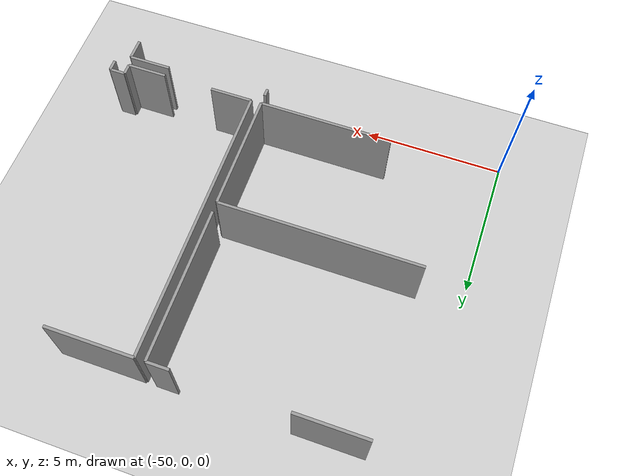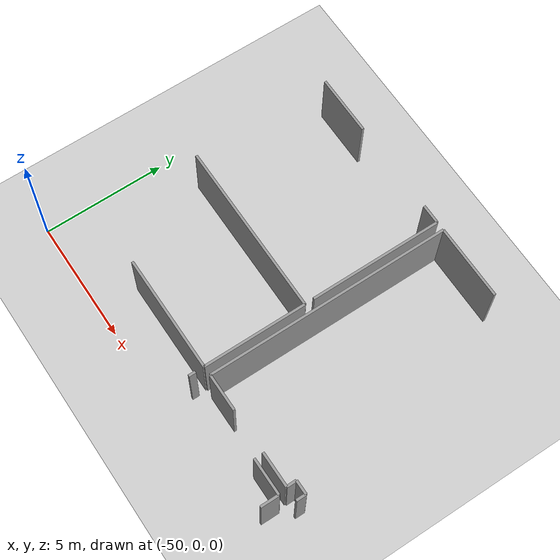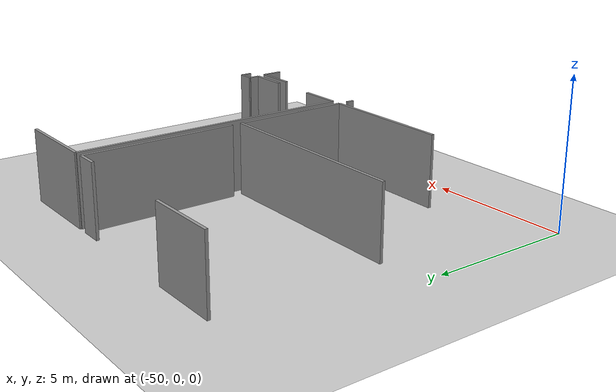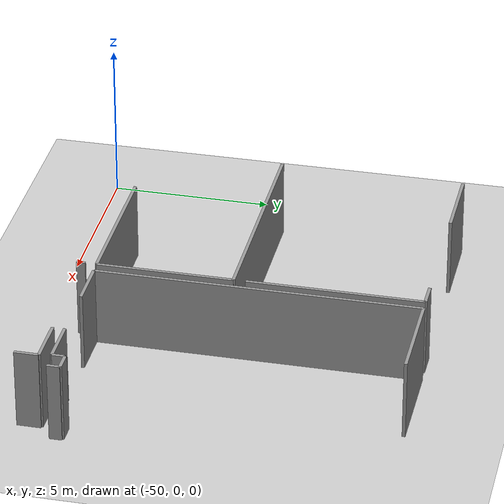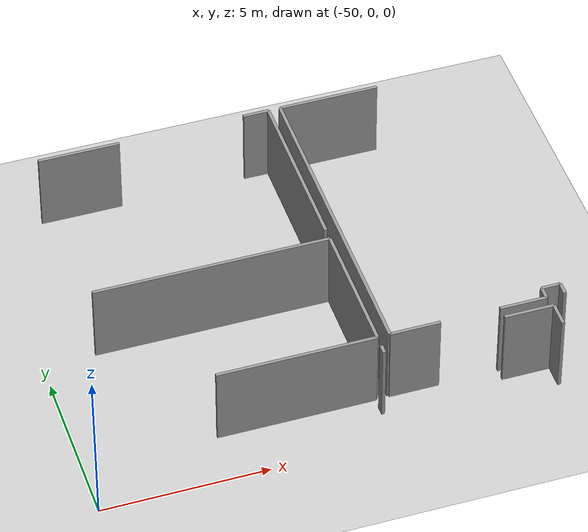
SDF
<sdf version="1.6">
 <world name="default">
  <model name="ground_plane">
   <static>1</static>
   <link name="link">
    <collision name="collision">
     <geometry><plane><normal>0 0 1</normal><size>100 100</size></plane></geometry>
     <surface><friction><ode><mu>100</mu><mu2>50</mu2></ode></friction></surface>
    </collision>
    <visual name="visual">
     <cast_shadows>0</cast_shadows>
     <geometry><plane><normal>0 0 1</normal><size>100 100</size></plane></geometry>
     <material>
      <script><uri>file://media/materials/scripts/gazebo.material</uri><name>Gazebo/Grey</name></script>
     </material>
    </visual>
   </link>
  </model>
  <model name="0510034689_Layout1">
   <static>1</static>
   <link name="Wall_30">
    <collision name="Wall_30_Collision">
     <geometry><box><size>0.277555330217 0.1 2.5</size></box></geometry>
     <pose>0.138777665109 0 1.25 0 0 0</pose>
    </collision>
    <visual name="Wall_30_Visual">
     <pose>0.138777665109 0 1.25 0 0 0</pose>
     <geometry><box><size>0.277555330217 0.1 2.5</size></box></geometry>
     <material>
      <script><uri>file://media/materials/scripts/gazebo.material</uri><name>Gazebo/Grey</name></script>
      <ambient>1 1 1 1</ambient>
     </material>
    </visual>
    <pose>15.0514435542 -11.0354577886 0 0 0 -1.57079632679</pose>
   </link>
   <link name="Wall_41">
    <collision name="Wall_41_Collision">
     <geometry><box><size>5.38218747105 0.1 2.5</size></box></geometry>
     <pose>2.69109373552 0 1.25 0 0 0</pose>
    </collision>
    <visual name="Wall_41_Visual">
     <pose>2.69109373552 0 1.25 0 0 0</pose>
     <geometry><box><size>5.38218747105 0.1 2.5</size></box></geometry>
     <material>
      <script><uri>file://media/materials/scripts/gazebo.material</uri><name>Gazebo/Grey</name></script>
      <ambient>1 1 1 1</ambient>
     </material>
    </visual>
    <pose>15.0523319343 -6.13604145435 0 0 0 1.57079632679</pose>
   </link>
   <link name="Wall_42">
    <collision name="Wall_42_Collision">
     <geometry><box><size>0.780759209646 0.1 2.5</size></box></geometry>
     <pose>0.390379604823 0 1.25 0 0 0</pose>
    </collision>
    <visual name="Wall_42_Visual">
     <pose>0.390379604823 0 1.25 0 0 0</pose>
     <geometry><box><size>0.780759209646 0.1 2.5</size></box></geometry>
     <material>
      <script><uri>file://media/materials/scripts/gazebo.material</uri><name>Gazebo/Grey</name></script>
      <ambient>1 1 1 1</ambient>
     </material>
    </visual>
    <pose>15.0523319343 -0.753853983306 0 0 0 3.14159265359</pose>
   </link>
   <link name="Wall_43">
    <collision name="Wall_43_Collision">
     <geometry><box><size>2.46779304804 0.1 2.5</size></box></geometry>
     <pose>1.23389652402 0 1.25 0 0 0</pose>
    </collision>
    <visual name="Wall_43_Visual">
     <pose>1.23389652402 0 1.25 0 0 0</pose>
     <geometry><box><size>2.46779304804 0.1 2.5</size></box></geometry>
     <material>
      <script><uri>file://media/materials/scripts/gazebo.material</uri><name>Gazebo/Grey</name></script>
      <ambient>1 1 1 1</ambient>
     </material>
    </visual>
    <pose>10.4411314917 -0.753853983306 0 0 0 3.14159265359</pose>
   </link>
   <link name="Wall_46">
    <collision name="Wall_46_Collision">
     <geometry><box><size>4.72605530039 0.1 2.5</size></box></geometry>
     <pose>2.3630276502 0 1.25 0 0 0</pose>
    </collision>
    <visual name="Wall_46_Visual">
     <pose>2.3630276502 0 1.25 0 0 0</pose>
     <geometry><box><size>4.72605530039 0.1 2.5</size></box></geometry>
     <material>
      <script><uri>file://media/materials/scripts/gazebo.material</uri><name>Gazebo/Grey</name></script>
      <ambient>1 1 1 1</ambient>
     </material>
    </visual>
    <pose>10.3303378002 -10.6905124811 0 0 0 0.0</pose>
   </link>
   <link name="Wall_47">
    <collision name="Wall_47_Collision">
     <geometry><box><size>4.18338196157 0.1 2.5</size></box></geometry>
     <pose>2.09169098078 0 1.25 0 0 0</pose>
    </collision>
    <visual name="Wall_47_Visual">
     <pose>2.09169098078 0 1.25 0 0 0</pose>
     <geometry><box><size>4.18338196157 0.1 2.5</size></box></geometry>
     <material>
      <script><uri>file://media/materials/scripts/gazebo.material</uri><name>Gazebo/Grey</name></script>
      <ambient>1 1 1 1</ambient>
     </material>
    </visual>
    <pose>15.0563931006 -10.6905124811 0 0 0 1.57079632679</pose>
   </link>
   <link name="Wall_48">
    <collision name="Wall_48_Collision">
     <geometry><box><size>7.08584670874 0.1 2.5</size></box></geometry>
     <pose>3.54292335437 0 1.25 0 0 0</pose>
    </collision>
    <visual name="Wall_48_Visual">
     <pose>3.54292335437 0 1.25 0 0 0</pose>
     <geometry><box><size>7.08584670874 0.1 2.5</size></box></geometry>
     <material>
      <script><uri>file://media/materials/scripts/gazebo.material</uri><name>Gazebo/Grey</name></script>
      <ambient>1 1 1 1</ambient>
     </material>
    </visual>
    <pose>15.0563931006 -6.50713051954 0 0 0 3.14159265359</pose>
   </link>
   <link name="Wall_52">
    <collision name="Wall_52_Collision">
     <geometry><box><size>3.03013766084 0.1 2.5</size></box></geometry>
     <pose>1.51506883042 0 1.25 0 0 0</pose>
    </collision>
    <visual name="Wall_52_Visual">
     <pose>1.51506883042 0 1.25 0 0 0</pose>
     <geometry><box><size>3.03013766084 0.1 2.5</size></box></geometry>
     <material>
      <script><uri>file://media/materials/scripts/gazebo.material</uri><name>Gazebo/Grey</name></script>
      <ambient>1 1 1 1</ambient>
     </material>
    </visual>
    <pose>15.415298667 -0.748650614061 0 0 0 0.0</pose>
   </link>
   <link name="Wall_60">
    <collision name="Wall_60_Collision">
     <geometry><box><size>0.389618136153 0.1 2.5</size></box></geometry>
     <pose>0.194809068077 0 1.25 0 0 0</pose>
    </collision>
    <visual name="Wall_60_Visual">
     <pose>0.194809068077 0 1.25 0 0 0</pose>
     <geometry><box><size>0.389618136153 0.1 2.5</size></box></geometry>
     <material>
      <script><uri>file://media/materials/scripts/gazebo.material</uri><name>Gazebo/Grey</name></script>
      <ambient>1 1 1 1</ambient>
     </material>
    </visual>
    <pose>20.6648636781 -10.674521639 0 0 0 1.57079632679</pose>
   </link>
   <link name="Wall_61">
    <collision name="Wall_61_Collision">
     <geometry><box><size>0.559171826675 0.1 2.5</size></box></geometry>
     <pose>0.279585913337 0 1.25 0 0 0</pose>
    </collision>
    <visual name="Wall_61_Visual">
     <pose>0.279585913337 0 1.25 0 0 0</pose>
     <geometry><box><size>0.559171826675 0.1 2.5</size></box></geometry>
     <material>
      <script><uri>file://media/materials/scripts/gazebo.material</uri><name>Gazebo/Grey</name></script>
      <ambient>1 1 1 1</ambient>
     </material>
    </visual>
    <pose>20.6648636781 -10.2849035029 0 0 0 3.14159265359</pose>
   </link>
   <link name="Wall_62">
    <collision name="Wall_62_Collision">
     <geometry><box><size>0.393171656613 0.1 2.5</size></box></geometry>
     <pose>0.196585828307 0 1.25 0 0 0</pose>
    </collision>
    <visual name="Wall_62_Visual">
     <pose>0.196585828307 0 1.25 0 0 0</pose>
     <geometry><box><size>0.393171656613 0.1 2.5</size></box></geometry>
     <material>
      <script><uri>file://media/materials/scripts/gazebo.material</uri><name>Gazebo/Grey</name></script>
      <ambient>1 1 1 1</ambient>
     </material>
    </visual>
    <pose>20.1056918514 -10.2849035029 0 0 0 -1.57079632679</pose>
   </link>
   <link name="Wall_63">
    <collision name="Wall_63_Collision">
     <geometry><box><size>1.4027522016 0.1 2.5</size></box></geometry>
     <pose>0.701376100798 0 1.25 0 0 0</pose>
    </collision>
    <visual name="Wall_63_Visual">
     <pose>0.701376100798 0 1.25 0 0 0</pose>
     <geometry><box><size>1.4027522016 0.1 2.5</size></box></geometry>
     <material>
      <script><uri>file://media/materials/scripts/gazebo.material</uri><name>Gazebo/Grey</name></script>
      <ambient>1 1 1 1</ambient>
     </material>
    </visual>
    <pose>20.1056918514 -10.6780751595 0 0 0 3.14159265359</pose>
   </link>
   <link name="Wall_64">
    <collision name="Wall_64_Collision">
     <geometry><box><size>1.50237768592 0.1 2.5</size></box></geometry>
     <pose>0.751188842961 0 1.25 0 0 0</pose>
    </collision>
    <visual name="Wall_64_Visual">
     <pose>0.751188842961 0 1.25 0 0 0</pose>
     <geometry><box><size>1.50237768592 0.1 2.5</size></box></geometry>
     <material>
      <script><uri>file://media/materials/scripts/gazebo.material</uri><name>Gazebo/Grey</name></script>
      <ambient>1 1 1 1</ambient>
     </material>
    </visual>
    <pose>16.9280830915 -10.6780751595 0 0 0 3.14159265359</pose>
   </link>
   <link name="Wall_65">
    <collision name="Wall_65_Collision">
     <geometry><box><size>9.92942999893 0.1 2.5</size></box></geometry>
     <pose>4.96471499947 0 1.25 0 0 0</pose>
    </collision>
    <visual name="Wall_65_Visual">
     <pose>4.96471499947 0 1.25 0 0 0</pose>
     <geometry><box><size>9.92942999893 0.1 2.5</size></box></geometry>
     <material>
      <script><uri>file://media/materials/scripts/gazebo.material</uri><name>Gazebo/Grey</name></script>
      <ambient>1 1 1 1</ambient>
     </material>
    </visual>
    <pose>15.4257054055 -10.6780751595 0 0 0 1.57184439707</pose>
   </link>
   <link name="Wall_79">
    <collision name="Wall_79_Collision">
     <geometry><box><size>1.48448317218 0.1 2.5</size></box></geometry>
     <pose>0.742241586088 0 1.25 0 0 0</pose>
    </collision>
    <visual name="Wall_79_Visual">
     <pose>0.742241586088 0 1.25 0 0 0</pose>
     <geometry><box><size>1.48448317218 0.1 2.5</size></box></geometry>
     <material>
      <script><uri>file://media/materials/scripts/gazebo.material</uri><name>Gazebo/Grey</name></script>
      <ambient>1 1 1 1</ambient>
     </material>
    </visual>
    <pose>18.7077622847 -11.0374883717 0 0 0 0.0</pose>
   </link>
   <link name="Wall_80">
    <collision name="Wall_80_Collision">
     <geometry><box><size>0.737355495456 0.1 2.5</size></box></geometry>
     <pose>0.368677747728 0 1.25 0 0 0</pose>
    </collision>
    <visual name="Wall_80_Visual">
     <pose>0.368677747728 0 1.25 0 0 0</pose>
     <geometry><box><size>0.737355495456 0.1 2.5</size></box></geometry>
     <material>
      <script><uri>file://media/materials/scripts/gazebo.material</uri><name>Gazebo/Grey</name></script>
      <ambient>1 1 1 1</ambient>
     </material>
    </visual>
    <pose>20.1922454569 -11.0374883717 0 0 0 -1.57079632679</pose>
   </link>
   <pose>-56.4 12.3396063334 0 0 0 0</pose>
  </model>
 </world>
</sdf>
